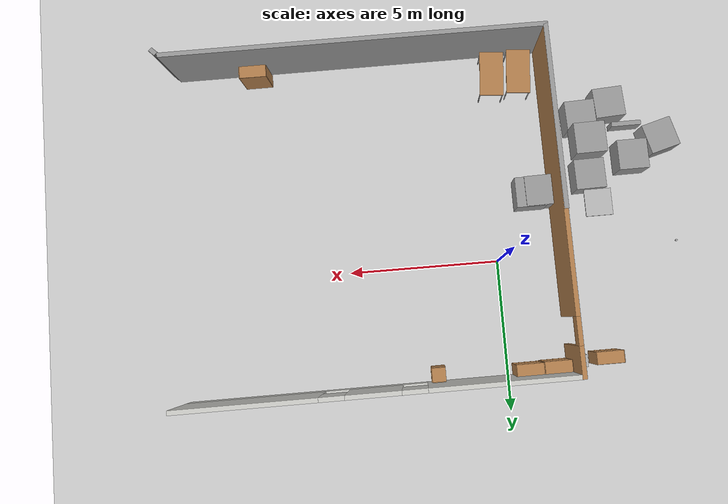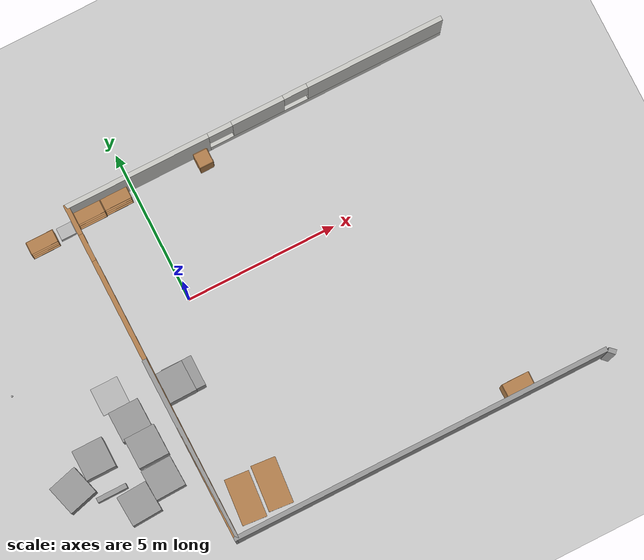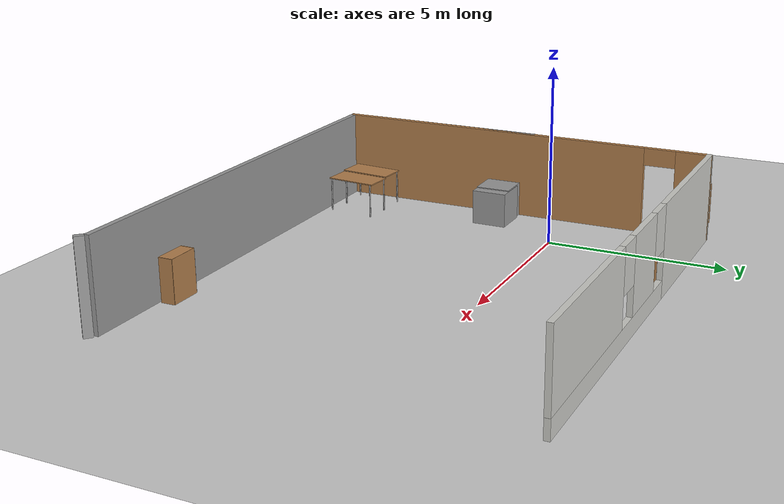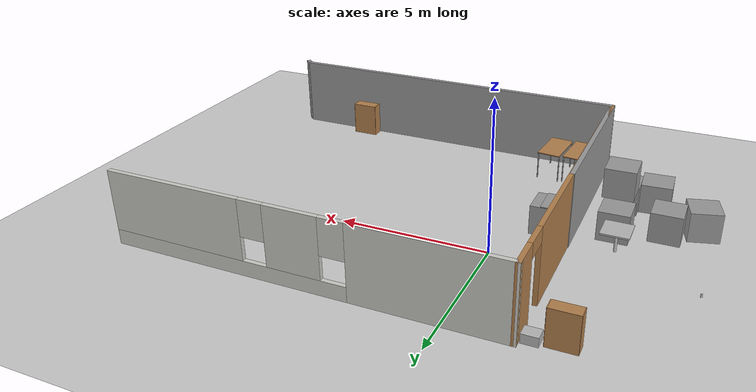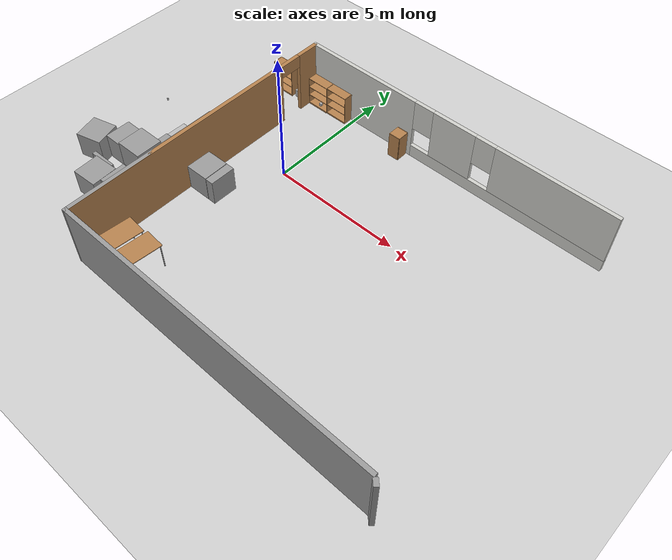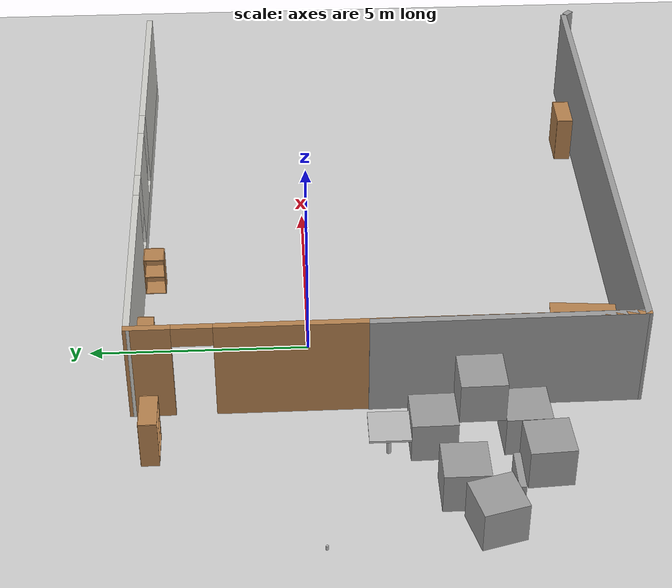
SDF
<sdf version="1.7">
 <world name="default">
  <light name="sun" type="directional">
   <pose>0 0 10 0 -0 0</pose>
   <diffuse>0.8 0.8 0.8 1</diffuse>
   <specular>0.2 0.2 0.2 1</specular>
   <attenuation>
    <range>1000</range>
    <constant>0.9</constant>
    <linear>0.01</linear>
    <quadratic>0.001</quadratic>
   </attenuation>
   <direction>-0.5 0.1 -0.9</direction>
   <spot><inner_angle>0</inner_angle><outer_angle>0</outer_angle><falloff>0</falloff></spot>
  </light>
  <model name="ground_plane">
   <static>1</static>
   <link name="link">
    <collision name="collision">
     <geometry><plane><normal>0 0 1</normal><size>100 100</size></plane></geometry>
     <surface>
      <contact><collide_bitmask>65535</collide_bitmask></contact>
      <friction><ode><mu>100</mu><mu2>50</mu2></ode></friction>
     </surface>
    </collision>
    <visual name="visual">
     <cast_shadows>0</cast_shadows>
     <geometry><plane><normal>0 0 1</normal><size>100 100</size></plane></geometry>
     <material>
      <script><uri>file://media/materials/scripts/gazebo.material</uri><name>Gazebo/Grey</name></script>
     </material>
    </visual>
   </link>
  </model>
  <gravity>0 0 -9.8</gravity>
  <magnetic_field>6e-06 2.3e-05 -4.2e-05</magnetic_field>
  <atmosphere type="adiabatic"/>
  <physics type="ode">
   <max_step_size>0.001</max_step_size>
   <real_time_factor>1</real_time_factor>
   <real_time_update_rate>1000</real_time_update_rate>
  </physics>
  <scene><ambient>0.4 0.4 0.4 1</ambient><background>0.7 0.7 0.7 1</background><shadows>1</shadows></scene>
  <audio><device>default</device></audio>
  <spherical_coordinates>
   <surface_model>EARTH_WGS84</surface_model>
   <latitude_deg>0</latitude_deg>
   <longitude_deg>0</longitude_deg>
   <elevation>0</elevation>
   <heading_deg>0</heading_deg>
  </spherical_coordinates>
  <model name="Raka_builder">
   <pose>4.26636 -1.78496 0 0 -0 0</pose>
   <link name="Wall_0">
    <collision name="Wall_0_Collision">
     <geometry><box><size>6.07306 0.15 2.5</size></box></geometry>
     <pose>0 0 1.25 0 -0 0</pose>
    </collision>
    <visual name="Wall_0_Visual">
     <pose>0 0 1.25 0 -0 0</pose>
     <geometry><box><size>6.07306 0.15 2.5</size></box></geometry>
     <material>
      <script><uri>file://media/materials/scripts/gazebo.material</uri><name>Gazebo/Grey</name></script>
      <ambient>1 1 1 1</ambient>
     </material>
     <meta><layer>0</layer></meta>
    </visual>
    <pose>-6.29958 -2.52891 0 0 -0 -1.56299</pose>
   </link>
   <link name="Wall_1">
    <pose>-6.29958 0.09609 0 0 -0 1.57494</pose>
    <visual name="Wall_1_Visual_0">
     <pose>-0.956613 0 1.25 0 -0 0</pose>
     <geometry><box><size>9.40975 0.15 2.5</size></box></geometry>
     <material>
      <script><uri>file://media/materials/scripts/gazebo.material</uri><name>Gazebo/Wood</name></script>
      <ambient>1 1 1 1</ambient>
     </material>
     <meta><layer>0</layer></meta>
    </visual>
    <collision name="Wall_1_Collision_0">
     <geometry><box><size>9.40975 0.15 2.5</size></box></geometry>
     <pose>-0.956613 0 1.25 0 -0 0</pose>
    </collision>
    <visual name="Wall_1_Visual_1">
     <pose>5.15487 0 1.25 0 -0 0</pose>
     <geometry><box><size>1.01323 0.15 2.5</size></box></geometry>
     <material>
      <script><uri>file://media/materials/scripts/gazebo.material</uri><name>Gazebo/Wood</name></script>
      <ambient>1 1 1 1</ambient>
     </material>
     <meta><layer>0</layer></meta>
    </visual>
    <collision name="Wall_1_Collision_1">
     <geometry><box><size>1.01323 0.15 2.5</size></box></geometry>
     <pose>5.15487 0 1.25 0 -0 0</pose>
    </collision>
    <visual name="Wall_1_Visual_2">
     <pose>4.19826 0 2.25 0 -0 0</pose>
     <geometry><box><size>0.9 0.15 0.5</size></box></geometry>
     <material>
      <script><uri>file://media/materials/scripts/gazebo.material</uri><name>Gazebo/Wood</name></script>
      <ambient>1 1 1 1</ambient>
     </material>
     <meta><layer>0</layer></meta>
    </visual>
    <collision name="Wall_1_Collision_2">
     <geometry><box><size>0.9 0.15 0.5</size></box></geometry>
     <pose>4.19826 0 2.25 0 -0 0</pose>
    </collision>
    <enable_wind>1</enable_wind>
   </link>
   <link name="Wall_16">
    <collision name="Wall_16_Collision">
     <geometry><box><size>12.5 0.15 2.5</size></box></geometry>
     <pose>0 0 1.25 0 -0 0</pose>
    </collision>
    <visual name="Wall_16_Visual">
     <pose>0 0 1.25 0 -0 0</pose>
     <geometry><box><size>12.5 0.15 2.5</size></box></geometry>
     <material>
      <script><uri>file://media/materials/scripts/gazebo.material</uri><name>Gazebo/Grey</name></script>
      <ambient>1 1 1 1</ambient>
     </material>
     <meta><layer>0</layer></meta>
    </visual>
    <pose>-0.101451 -5.49035 0 0 -0 0</pose>
   </link>
   <link name="Wall_2">
    <pose>-0.022713 5.68253 0 0 -0 0</pose>
    <visual name="Wall_2_Visual_0">
     <pose>-3.95906 0 1.25 0 -0 0</pose>
     <geometry><box><size>4.83189 0.15 2.5</size></box></geometry>
     <material>
      <script><uri>file://media/materials/scripts/gazebo.material</uri><name>Gazebo/CeilingTiled</name></script>
      <ambient>1 1 1 1</ambient>
     </material>
     <meta><layer>0</layer></meta>
    </visual>
    <collision name="Wall_2_Collision_0">
     <geometry><box><size>4.83189 0.15 2.5</size></box></geometry>
     <pose>-3.95906 0 1.25 0 -0 0</pose>
    </collision>
    <visual name="Wall_2_Visual_1">
     <pose>2.41594 0 0.25 0 -0 0</pose>
     <geometry><box><size>7.91811 0.15 0.5</size></box></geometry>
     <material>
      <script><uri>file://media/materials/scripts/gazebo.material</uri><name>Gazebo/CeilingTiled</name></script>
      <ambient>1 1 1 1</ambient>
     </material>
     <meta><layer>0</layer></meta>
    </visual>
    <collision name="Wall_2_Collision_1">
     <geometry><box><size>7.91811 0.15 0.5</size></box></geometry>
     <pose>2.41594 0 0.25 0 -0 0</pose>
    </collision>
    <visual name="Wall_2_Visual_2">
     <pose>0.129074 0 1.5 0 -0 0</pose>
     <geometry><box><size>1.74437 0.15 2</size></box></geometry>
     <material>
      <script><uri>file://media/materials/scripts/gazebo.material</uri><name>Gazebo/CeilingTiled</name></script>
      <ambient>1 1 1 1</ambient>
     </material>
     <meta><layer>0</layer></meta>
    </visual>
    <collision name="Wall_2_Collision_2">
     <geometry><box><size>1.74437 0.15 2</size></box></geometry>
     <pose>0.129074 0 1.5 0 -0 0</pose>
    </collision>
    <visual name="Wall_2_Visual_3">
     <pose>4.08813 0 1.5 0 -0 0</pose>
     <geometry><box><size>4.57374 0.15 2</size></box></geometry>
     <material>
      <script><uri>file://media/materials/scripts/gazebo.material</uri><name>Gazebo/CeilingTiled</name></script>
      <ambient>1 1 1 1</ambient>
     </material>
     <meta><layer>0</layer></meta>
    </visual>
    <collision name="Wall_2_Collision_3">
     <geometry><box><size>4.57374 0.15 2</size></box></geometry>
     <pose>4.08813 0 1.5 0 -0 0</pose>
    </collision>
    <visual name="Wall_2_Visual_4">
     <pose>-1.14311 0 1.9 0 -0 0</pose>
     <geometry><box><size>0.8 0.15 1.2</size></box></geometry>
     <material>
      <script><uri>file://media/materials/scripts/gazebo.material</uri><name>Gazebo/CeilingTiled</name></script>
      <ambient>1 1 1 1</ambient>
     </material>
     <meta><layer>0</layer></meta>
    </visual>
    <collision name="Wall_2_Collision_4">
     <geometry><box><size>0.8 0.15 1.2</size></box></geometry>
     <pose>-1.14311 0 1.9 0 -0 0</pose>
    </collision>
    <visual name="Wall_2_Visual_5">
     <pose>1.40126 0 1.9 0 -0 0</pose>
     <geometry><box><size>0.8 0.15 1.2</size></box></geometry>
     <material>
      <script><uri>file://media/materials/scripts/gazebo.material</uri><name>Gazebo/CeilingTiled</name></script>
      <ambient>1 1 1 1</ambient>
     </material>
     <meta><layer>0</layer></meta>
    </visual>
    <collision name="Wall_2_Collision_5">
     <geometry><box><size>0.8 0.15 1.2</size></box></geometry>
     <pose>1.40126 0 1.9 0 -0 0</pose>
    </collision>
   </link>
   <link name="Wall_7">
    <collision name="Wall_7_Collision">
     <geometry><box><size>0.248281 0.15 2.5</size></box></geometry>
     <pose>0 0 1.25 0 -0 0</pose>
    </collision>
    <visual name="Wall_7_Visual">
     <pose>0 0 1.25 0 -0 0</pose>
     <geometry><box><size>0.248281 0.15 2.5</size></box></geometry>
     <material>
      <script><uri>file://media/materials/scripts/gazebo.material</uri><name>Gazebo/Grey</name></script>
      <ambient>1 1 1 1</ambient>
     </material>
     <meta><layer>0</layer></meta>
    </visual>
    <pose>6.25719 -5.61733 0 0 -0 -0.776943</pose>
   </link>
   <static>1</static>
  </model>
  <model name="cafe_table">
   <static>1</static>
   <link name="link">
    <visual name="top">
     <pose>0 0 0.75 0 -0 0</pose>
     <geometry><box><size>0.9 0.9 0.05</size></box></geometry>
    </visual>
    <collision name="top_collision">
     <pose>0 0 0.75 0 -0 0</pose>
     <geometry><box><size>0.9 0.9 0.05</size></box></geometry>
    </collision>
    <visual name="leg">
     <pose>0 0 0.35 0 -0 0</pose>
     <geometry><cylinder><radius>0.05</radius><length>0.7</length></cylinder></geometry>
    </visual>
    <collision name="leg_collision">
     <pose>0 0 0.35 0 -0 0</pose>
     <geometry><cylinder><radius>0.05</radius><length>0.7</length></cylinder></geometry>
    </collision>
   </link>
   <pose>-3.47969 -1.62928 0 0 -0 0</pose>
  </model>
  <model name="cardboard_box">
   <static>1</static>
   <link name="link">
    <visual name="visual"><geometry><box><size>0.5 0.4 0.3</size></box></geometry></visual>
    <collision name="collision"><geometry><box><size>0.5 0.4 0.3</size></box></geometry></collision>
   </link>
   <pose>-2.40869 3.56845 0.15 0 -0 0</pose>
  </model>
  <model name="coke_can">
   <static>1</static>
   <link name="link">
    <visual name="visual">
     <geometry><cylinder><radius>0.03</radius><length>0.12</length></cylinder></geometry>
    </visual>
    <collision name="collision">
     <geometry><cylinder><radius>0.03</radius><length>0.12</length></cylinder></geometry>
    </collision>
   </link>
   <pose>-6.16573 -0.199524 0.02 0 -0 0</pose>
  </model>
  <model name="bookshelf">
   <static>1</static>
   <link name="link">
    <inertial><mass>1</mass></inertial>
    <collision name="back">
     <pose>0 0.005 0.6 0 -0 0</pose>
     <geometry><box><size>0.9 0.01 1.2</size></box></geometry>
    </collision>
    <visual name="visual1">
     <pose>0 0.005 0.6 0 -0 0</pose>
     <geometry><box><size>0.9 0.01 1.2</size></box></geometry>
     <material>
      <script><uri>file://media/materials/scripts/gazebo.material</uri><name>Gazebo/Wood</name></script>
     </material>
    </visual>
    <collision name="left_side">
     <pose>0.45 -0.195 0.6 0 -0 0</pose>
     <geometry><box><size>0.02 0.4 1.2</size></box></geometry>
    </collision>
    <visual name="visual2">
     <pose>0.45 -0.195 0.6 0 -0 0</pose>
     <geometry><box><size>0.02 0.4 1.2</size></box></geometry>
     <material>
      <script><uri>file://media/materials/scripts/gazebo.material</uri><name>Gazebo/Wood</name></script>
     </material>
    </visual>
    <collision name="right_side">
     <pose>-0.45 -0.195 0.6 0 -0 0</pose>
     <geometry><box><size>0.02 0.4 1.2</size></box></geometry>
    </collision>
    <visual name="visual3">
     <pose>-0.45 -0.195 0.6 0 -0 0</pose>
     <geometry><box><size>0.02 0.4 1.2</size></box></geometry>
     <material>
      <script><uri>file://media/materials/scripts/gazebo.material</uri><name>Gazebo/Wood</name></script>
     </material>
    </visual>
    <collision name="bottom">
     <pose>0 -0.195 0.03 0 -0 0</pose>
     <geometry><box><size>0.88 0.4 0.06</size></box></geometry>
    </collision>
    <visual name="visual4">
     <pose>0 -0.195 0.03 0 -0 0</pose>
     <geometry><box><size>0.88 0.4 0.06</size></box></geometry>
     <material>
      <script><uri>file://media/materials/scripts/gazebo.material</uri><name>Gazebo/Wood</name></script>
     </material>
    </visual>
    <collision name="top">
     <pose>0 -0.195 1.19 0 -0 0</pose>
     <geometry><box><size>0.88 0.4 0.02</size></box></geometry>
    </collision>
    <visual name="visual5">
     <pose>0 -0.195 1.19 0 -0 0</pose>
     <geometry><box><size>0.88 0.4 0.02</size></box></geometry>
     <material>
      <script><uri>file://media/materials/scripts/gazebo.material</uri><name>Gazebo/Wood</name></script>
     </material>
    </visual>
    <collision name="low_shelf">
     <pose>0 -0.195 0.43 0 -0 0</pose>
     <geometry><box><size>0.88 0.4 0.02</size></box></geometry>
    </collision>
    <visual name="visual6">
     <pose>0 -0.195 0.43 0 -0 0</pose>
     <geometry><box><size>0.88 0.4 0.02</size></box></geometry>
     <material>
      <script><uri>file://media/materials/scripts/gazebo.material</uri><name>Gazebo/Wood</name></script>
     </material>
    </visual>
    <collision name="high_shelf">
     <pose>0 -0.195 0.8 0 -0 0</pose>
     <geometry><box><size>0.88 0.4 0.02</size></box></geometry>
    </collision>
    <visual name="visual7">
     <pose>0 -0.195 0.8 0 -0 0</pose>
     <geometry><box><size>0.88 0.4 0.02</size></box></geometry>
     <material>
      <script><uri>file://media/materials/scripts/gazebo.material</uri><name>Gazebo/Wood</name></script>
     </material>
    </visual>
   </link>
   <pose>-3.21013 3.66198 0 0 -0 0</pose>
  </model>
  <model name="bookshelf_0">
   <static>1</static>
   <link name="link">
    <inertial><mass>1</mass></inertial>
    <collision name="back">
     <pose>0 0.005 0.6 0 -0 0</pose>
     <geometry><box><size>0.9 0.01 1.2</size></box></geometry>
    </collision>
    <visual name="visual1">
     <pose>0 0.005 0.6 0 -0 0</pose>
     <geometry><box><size>0.9 0.01 1.2</size></box></geometry>
     <material>
      <script><uri>file://media/materials/scripts/gazebo.material</uri><name>Gazebo/Wood</name></script>
     </material>
    </visual>
    <collision name="left_side">
     <pose>0.45 -0.195 0.6 0 -0 0</pose>
     <geometry><box><size>0.02 0.4 1.2</size></box></geometry>
    </collision>
    <visual name="visual2">
     <pose>0.45 -0.195 0.6 0 -0 0</pose>
     <geometry><box><size>0.02 0.4 1.2</size></box></geometry>
     <material>
      <script><uri>file://media/materials/scripts/gazebo.material</uri><name>Gazebo/Wood</name></script>
     </material>
    </visual>
    <collision name="right_side">
     <pose>-0.45 -0.195 0.6 0 -0 0</pose>
     <geometry><box><size>0.02 0.4 1.2</size></box></geometry>
    </collision>
    <visual name="visual3">
     <pose>-0.45 -0.195 0.6 0 -0 0</pose>
     <geometry><box><size>0.02 0.4 1.2</size></box></geometry>
     <material>
      <script><uri>file://media/materials/scripts/gazebo.material</uri><name>Gazebo/Wood</name></script>
     </material>
    </visual>
    <collision name="bottom">
     <pose>0 -0.195 0.03 0 -0 0</pose>
     <geometry><box><size>0.88 0.4 0.06</size></box></geometry>
    </collision>
    <visual name="visual4">
     <pose>0 -0.195 0.03 0 -0 0</pose>
     <geometry><box><size>0.88 0.4 0.06</size></box></geometry>
     <material>
      <script><uri>file://media/materials/scripts/gazebo.material</uri><name>Gazebo/Wood</name></script>
     </material>
    </visual>
    <collision name="top">
     <pose>0 -0.195 1.19 0 -0 0</pose>
     <geometry><box><size>0.88 0.4 0.02</size></box></geometry>
    </collision>
    <visual name="visual5">
     <pose>0 -0.195 1.19 0 -0 0</pose>
     <geometry><box><size>0.88 0.4 0.02</size></box></geometry>
     <material>
      <script><uri>file://media/materials/scripts/gazebo.material</uri><name>Gazebo/Wood</name></script>
     </material>
    </visual>
    <collision name="low_shelf">
     <pose>0 -0.195 0.43 0 -0 0</pose>
     <geometry><box><size>0.88 0.4 0.02</size></box></geometry>
    </collision>
    <visual name="visual6">
     <pose>0 -0.195 0.43 0 -0 0</pose>
     <geometry><box><size>0.88 0.4 0.02</size></box></geometry>
     <material>
      <script><uri>file://media/materials/scripts/gazebo.material</uri><name>Gazebo/Wood</name></script>
     </material>
    </visual>
    <collision name="high_shelf">
     <pose>0 -0.195 0.8 0 -0 0</pose>
     <geometry><box><size>0.88 0.4 0.02</size></box></geometry>
    </collision>
    <visual name="visual7">
     <pose>0 -0.195 0.8 0 -0 0</pose>
     <geometry><box><size>0.88 0.4 0.02</size></box></geometry>
     <material>
      <script><uri>file://media/materials/scripts/gazebo.material</uri><name>Gazebo/Wood</name></script>
     </material>
    </visual>
   </link>
   <pose>-1.52842 3.82696 0 0 -0 0</pose>
  </model>
  <model name="cardboard_box">
   <static>1</static>
   <link name="link">
    <visual name="visual"><geometry><box><size>0.5 0.4 0.3</size></box></geometry></visual>
    <collision name="collision"><geometry><box><size>0.5 0.4 0.3</size></box></geometry></collision>
   </link>
   <pose>-2.40869 3.56845 0.15 0 -0 0</pose>
  </model>
  <model name="coke_can">
   <static>1</static>
   <link name="link">
    <visual name="visual">
     <geometry><cylinder><radius>0.03</radius><length>0.12</length></cylinder></geometry>
    </visual>
    <collision name="collision">
     <geometry><cylinder><radius>0.03</radius><length>0.12</length></cylinder></geometry>
    </collision>
   </link>
   <pose>-6.16573 -0.199524 0.02 0 -0 0</pose>
  </model>
  <model name="depth_camera">
   <link name="link">
    <pose>0 0 0.05 0 -0 0</pose>
    <inertial>
     <mass>0.1</mass>
     <inertia>
      <ixx>0.000166667</ixx>
      <iyy>0.000166667</iyy>
      <izz>0.000166667</izz>
      <ixy>0</ixy>
      <ixz>0</ixz>
      <iyz>0</iyz>
     </inertia>
    </inertial>
    <collision name="collision"><geometry><box><size>0.1 0.1 0.1</size></box></geometry></collision>
    <visual name="visual"><geometry><box><size>0.1 0.1 0.1</size></box></geometry></visual>
    <sensor name="camera" type="depth">
     <camera>
      <horizontal_fov>1.047</horizontal_fov>
      <image><width>320</width><height>240</height></image>
      <clip><near>0.1</near><far>100</far></clip>
     </camera>
     <always_on>1</always_on>
     <update_rate>30</update_rate>
     <visualize>1</visualize>
    </sensor>
   </link>
   <pose>-1.49922 3.5854 0.06 0 -0 -1e-06</pose>
  </model>
  <model name="cabinet">
   <static>1</static>
   <link name="cabinet_bottom_plate">
    <inertial>
     <pose>0 0 -1 0 -0 0</pose>
     <inertia><ixx>2.05</ixx><ixy>0</ixy><ixz>0</ixz><iyy>2.05</iyy><iyz>0</iyz><izz>2.05</izz></inertia>
     <mass>25</mass>
    </inertial>
    <collision name="cabinet_bottom_plate_geom">
     <pose>0 0 0.01 0 -0 0</pose>
     <geometry><box><size>0.45 0.45 0.02</size></box></geometry>
    </collision>
    <visual name="cabinet_bottom_plate_geom_visual">
     <pose>0 0 0.01 0 -0 0</pose>
     <geometry><box><size>0.45 0.45 0.02</size></box></geometry>
     <material>
      <script><uri>file://media/materials/scripts/gazebo.material</uri><name>Gazebo/Wood</name></script>
     </material>
    </visual>
    <collision name="cabinet_bottom_plate_geom_cabinet_back_plate">
     <pose>0.235 0 0.51 0 -0 0</pose>
     <geometry><box><size>0.02 0.45 1.02</size></box></geometry>
    </collision>
    <visual name="cabinet_bottom_plate_geom_cabinet_back_plate_visual">
     <pose>0.235 0 0.51 0 -0 0</pose>
     <geometry><box><size>0.02 0.45 1.02</size></box></geometry>
     <material>
      <script><uri>file://media/materials/scripts/gazebo.material</uri><name>Gazebo/Wood</name></script>
     </material>
    </visual>
    <collision name="cabinet_bottom_plate_geom_cabinet_left_plate">
     <pose>0 0.235 0.51 0 -0 0</pose>
     <geometry><box><size>0.45 0.02 1.02</size></box></geometry>
    </collision>
    <visual name="cabinet_bottom_plate_geom_cabinet_left_plate_visual">
     <pose>0 0.235 0.51 0 -0 0</pose>
     <geometry><box><size>0.45 0.02 1.02</size></box></geometry>
     <material>
      <script><uri>file://media/materials/scripts/gazebo.material</uri><name>Gazebo/Wood</name></script>
     </material>
    </visual>
    <collision name="cabinet_bottom_plate_geom_cabinet_middle_plate">
     <pose>0 0 0.51 0 -0 0</pose>
     <geometry><box><size>0.45 0.45 0.02</size></box></geometry>
    </collision>
    <visual name="cabinet_bottom_plate_geom_cabinet_middle_plate_visual">
     <pose>0 0 0.51 0 -0 0</pose>
     <geometry><box><size>0.45 0.45 0.02</size></box></geometry>
     <material>
      <script><uri>file://media/materials/scripts/gazebo.material</uri><name>Gazebo/Wood</name></script>
     </material>
    </visual>
    <collision name="cabinet_bottom_plate_geom_cabinet_right_plate">
     <pose>0 -0.235 0.51 0 -0 0</pose>
     <geometry><box><size>0.45 0.02 1.02</size></box></geometry>
    </collision>
    <visual name="cabinet_bottom_plate_geom_cabinet_right_plate_visual">
     <pose>0 -0.235 0.51 0 -0 0</pose>
     <geometry><box><size>0.45 0.02 1.02</size></box></geometry>
     <material>
      <script><uri>file://media/materials/scripts/gazebo.material</uri><name>Gazebo/Wood</name></script>
     </material>
    </visual>
    <collision name="cabinet_bottom_plate_geom_cabinet_top_plate">
     <pose>0 0 1.01 0 -0 0</pose>
     <geometry><box><size>0.45 0.45 0.02</size></box></geometry>
    </collision>
    <visual name="cabinet_bottom_plate_geom_cabinet_top_plate_visual">
     <pose>0 0 1.01 0 -0 0</pose>
     <geometry><box><size>0.45 0.45 0.02</size></box></geometry>
     <material>
      <script><uri>file://media/materials/scripts/gazebo.material</uri><name>Gazebo/Wood</name></script>
     </material>
    </visual>
   </link>
   <pose>2.31925 3.56049 0 0 -0 0</pose>
  </model>
  <model name="unit_box">
   <pose>-4.75456 -4.26428 0.317863 1e-06 -0 0.004816</pose>
   <link name="link">
    <inertial>
     <mass>1</mass>
     <inertia>
      <ixx>0.166667</ixx>
      <ixy>0</ixy>
      <ixz>0</ixz>
      <iyy>0.166667</iyy>
      <iyz>0</iyz>
      <izz>0.166667</izz>
     </inertia>
    </inertial>
    <collision name="collision"><geometry><box><size>1 0.15557 0.635726</size></box></geometry></collision>
    <visual name="visual">
     <geometry><box><size>1 0.15557 0.635726</size></box></geometry>
     <material>
      <script><name>Gazebo/Grey</name><uri>file://media/materials/scripts/gazebo.material</uri></script>
     </material>
    </visual>
    <enable_wind>1</enable_wind>
   </link>
  </model>
  <model name="unit_box_0">
   <pose>-5.76254 -3.6844 0.5 0 -0 0.266682</pose>
   <link name="link">
    <inertial>
     <mass>1</mass>
     <inertia>
      <ixx>0.166667</ixx>
      <ixy>0</ixy>
      <ixz>0</ixz>
      <iyy>0.166667</iyy>
      <iyz>0</iyz>
      <izz>0.166667</izz>
     </inertia>
    </inertial>
    <collision name="collision"><geometry><box><size>1 1 1</size></box></geometry></collision>
    <visual name="visual">
     <geometry><box><size>1 1 1</size></box></geometry>
     <material>
      <script><name>Gazebo/Grey</name><uri>file://media/materials/scripts/gazebo.material</uri></script>
     </material>
    </visual>
   </link>
  </model>
  <model name="unit_box_1">
   <pose>-4.76296 -3.12092 0.499995 0 1e-05 0.004406</pose>
   <link name="link">
    <inertial>
     <mass>1</mass>
     <inertia>
      <ixx>0.166667</ixx>
      <ixy>0</ixy>
      <ixz>0</ixz>
      <iyy>0.166667</iyy>
      <iyz>0</iyz>
      <izz>0.166667</izz>
     </inertia>
    </inertial>
    <collision name="collision"><geometry><box><size>1 1 1</size></box></geometry></collision>
    <visual name="visual">
     <geometry><box><size>1 1 1</size></box></geometry>
     <material>
      <script><name>Gazebo/Grey</name><uri>file://media/materials/scripts/gazebo.material</uri></script>
     </material>
    </visual>
   </link>
  </model>
  <model name="unit_box_2">
   <pose>-4.15309 -4.95442 0.5 0 -0 0.056823</pose>
   <link name="link">
    <inertial>
     <mass>1</mass>
     <inertia>
      <ixx>0.166667</ixx>
      <ixy>0</ixy>
      <ixz>0</ixz>
      <iyy>0.166667</iyy>
      <iyz>0</iyz>
      <izz>0.166667</izz>
     </inertia>
    </inertial>
    <collision name="collision"><geometry><box><size>1 1 1</size></box></geometry></collision>
    <visual name="visual">
     <geometry><box><size>1 1 1</size></box></geometry>
     <material>
      <script><name>Gazebo/Grey</name><uri>file://media/materials/scripts/gazebo.material</uri></script>
     </material>
    </visual>
   </link>
  </model>
  <model name="unit_box_3">
   <pose>-3.16085 -4.59198 0.499995 1e-05 -0 0.034737</pose>
   <link name="link">
    <inertial>
     <mass>1</mass>
     <inertia>
      <ixx>0.166667</ixx>
      <ixy>0</ixy>
      <ixz>0</ixz>
      <iyy>0.166667</iyy>
      <iyz>0</iyz>
      <izz>0.166667</izz>
     </inertia>
    </inertial>
    <collision name="collision"><geometry><box><size>1 1 1</size></box></geometry></collision>
    <visual name="visual">
     <geometry><box><size>1 1 1</size></box></geometry>
     <material>
      <script><name>Gazebo/Grey</name><uri>file://media/materials/scripts/gazebo.material</uri></script>
     </material>
    </visual>
   </link>
  </model>
  <model name="unit_box_4">
   <pose>-3.26144 -2.58284 0.499995 0 -1e-05 0.01485</pose>
   <link name="link">
    <inertial>
     <mass>1</mass>
     <inertia>
      <ixx>0.166667</ixx>
      <ixy>0</ixy>
      <ixz>0</ixz>
      <iyy>0.166667</iyy>
      <iyz>0</iyz>
      <izz>0.166667</izz>
     </inertia>
    </inertial>
    <collision name="collision"><geometry><box><size>1 1 1</size></box></geometry></collision>
    <visual name="visual">
     <geometry><box><size>1 1 1</size></box></geometry>
     <material>
      <script><name>Gazebo/Grey</name><uri>file://media/materials/scripts/gazebo.material</uri></script>
     </material>
    </visual>
   </link>
  </model>
  <model name="bookshelf_0_clone">
   <static>1</static>
   <link name="link">
    <inertial><mass>1</mass></inertial>
    <collision name="back">
     <pose>0 0.005 0.6 0 -0 0</pose>
     <geometry><box><size>0.9 0.01 1.2</size></box></geometry>
    </collision>
    <visual name="visual1">
     <pose>0 0.005 0.6 0 -0 0</pose>
     <geometry><box><size>0.9 0.01 1.2</size></box></geometry>
     <material>
      <script><uri>file://media/materials/scripts/gazebo.material</uri><name>Gazebo/Wood</name></script>
     </material>
    </visual>
    <collision name="left_side">
     <pose>0.45 -0.195 0.6 0 -0 0</pose>
     <geometry><box><size>0.02 0.4 1.2</size></box></geometry>
    </collision>
    <visual name="visual2">
     <pose>0.45 -0.195 0.6 0 -0 0</pose>
     <geometry><box><size>0.02 0.4 1.2</size></box></geometry>
     <material>
      <script><uri>file://media/materials/scripts/gazebo.material</uri><name>Gazebo/Wood</name></script>
     </material>
    </visual>
    <collision name="right_side">
     <pose>-0.45 -0.195 0.6 0 -0 0</pose>
     <geometry><box><size>0.02 0.4 1.2</size></box></geometry>
    </collision>
    <visual name="visual3">
     <pose>-0.45 -0.195 0.6 0 -0 0</pose>
     <geometry><box><size>0.02 0.4 1.2</size></box></geometry>
     <material>
      <script><uri>file://media/materials/scripts/gazebo.material</uri><name>Gazebo/Wood</name></script>
     </material>
    </visual>
    <collision name="bottom">
     <pose>0 -0.195 0.03 0 -0 0</pose>
     <geometry><box><size>0.88 0.4 0.06</size></box></geometry>
    </collision>
    <visual name="visual4">
     <pose>0 -0.195 0.03 0 -0 0</pose>
     <geometry><box><size>0.88 0.4 0.06</size></box></geometry>
     <material>
      <script><uri>file://media/materials/scripts/gazebo.material</uri><name>Gazebo/Wood</name></script>
     </material>
    </visual>
    <collision name="top">
     <pose>0 -0.195 1.19 0 -0 0</pose>
     <geometry><box><size>0.88 0.4 0.02</size></box></geometry>
    </collision>
    <visual name="visual5">
     <pose>0 -0.195 1.19 0 -0 0</pose>
     <geometry><box><size>0.88 0.4 0.02</size></box></geometry>
     <material>
      <script><uri>file://media/materials/scripts/gazebo.material</uri><name>Gazebo/Wood</name></script>
     </material>
    </visual>
    <collision name="low_shelf">
     <pose>0 -0.195 0.43 0 -0 0</pose>
     <geometry><box><size>0.88 0.4 0.02</size></box></geometry>
    </collision>
    <visual name="visual6">
     <pose>0 -0.195 0.43 0 -0 0</pose>
     <geometry><box><size>0.88 0.4 0.02</size></box></geometry>
     <material>
      <script><uri>file://media/materials/scripts/gazebo.material</uri><name>Gazebo/Wood</name></script>
     </material>
    </visual>
    <collision name="high_shelf">
     <pose>0 -0.195 0.8 0 -0 0</pose>
     <geometry><box><size>0.88 0.4 0.02</size></box></geometry>
    </collision>
    <visual name="visual7">
     <pose>0 -0.195 0.8 0 -0 0</pose>
     <geometry><box><size>0.88 0.4 0.02</size></box></geometry>
     <material>
      <script><uri>file://media/materials/scripts/gazebo.material</uri><name>Gazebo/Wood</name></script>
     </material>
    </visual>
   </link>
   <pose>-0.617959 3.84635 0 0 -0 0</pose>
  </model>
  <model name="unit_box_5">
   <pose>-3.16141 -3.58215 1.5 0 -0 0.01644</pose>
   <link name="link">
    <inertial>
     <mass>1</mass>
     <inertia>
      <ixx>0.166667</ixx>
      <ixy>0</ixy>
      <ixz>0</ixz>
      <iyy>0.166667</iyy>
      <iyz>0</iyz>
      <izz>0.166667</izz>
     </inertia>
    </inertial>
    <collision name="collision"><geometry><box><size>1 1 1</size></box></geometry></collision>
    <visual name="visual">
     <geometry><box><size>1 1 1</size></box></geometry>
     <material>
      <script><name>Gazebo/Grey</name><uri>file://media/materials/scripts/gazebo.material</uri></script>
     </material>
    </visual>
    <enable_wind>1</enable_wind>
   </link>
   <enable_wind>1</enable_wind>
  </model>
  <model name="bookshelf_1">
   <static>1</static>
   <link name="link">
    <inertial><mass>1</mass></inertial>
    <collision name="back">
     <pose>0 0.005 0.6 0 -0 0</pose>
     <geometry><box><size>0.9 0.01 1.2</size></box></geometry>
    </collision>
    <visual name="visual1">
     <pose>0 0.005 0.6 0 -0 0</pose>
     <geometry><box><size>0.9 0.01 1.2</size></box></geometry>
     <material>
      <script><uri>file://media/materials/scripts/gazebo.material</uri><name>Gazebo/Wood</name></script>
     </material>
    </visual>
    <collision name="left_side">
     <pose>0.45 -0.195 0.6 0 -0 0</pose>
     <geometry><box><size>0.02 0.4 1.2</size></box></geometry>
    </collision>
    <visual name="visual2">
     <pose>0.45 -0.195 0.6 0 -0 0</pose>
     <geometry><box><size>0.02 0.4 1.2</size></box></geometry>
     <material>
      <script><uri>file://media/materials/scripts/gazebo.material</uri><name>Gazebo/Wood</name></script>
     </material>
    </visual>
    <collision name="right_side">
     <pose>-0.45 -0.195 0.6 0 -0 0</pose>
     <geometry><box><size>0.02 0.4 1.2</size></box></geometry>
    </collision>
    <visual name="visual3">
     <pose>-0.45 -0.195 0.6 0 -0 0</pose>
     <geometry><box><size>0.02 0.4 1.2</size></box></geometry>
     <material>
      <script><uri>file://media/materials/scripts/gazebo.material</uri><name>Gazebo/Wood</name></script>
     </material>
    </visual>
    <collision name="bottom">
     <pose>0 -0.195 0.03 0 -0 0</pose>
     <geometry><box><size>0.88 0.4 0.06</size></box></geometry>
    </collision>
    <visual name="visual4">
     <pose>0 -0.195 0.03 0 -0 0</pose>
     <geometry><box><size>0.88 0.4 0.06</size></box></geometry>
     <material>
      <script><uri>file://media/materials/scripts/gazebo.material</uri><name>Gazebo/Wood</name></script>
     </material>
    </visual>
    <collision name="top">
     <pose>0 -0.195 1.19 0 -0 0</pose>
     <geometry><box><size>0.88 0.4 0.02</size></box></geometry>
    </collision>
    <visual name="visual5">
     <pose>0 -0.195 1.19 0 -0 0</pose>
     <geometry><box><size>0.88 0.4 0.02</size></box></geometry>
     <material>
      <script><uri>file://media/materials/scripts/gazebo.material</uri><name>Gazebo/Wood</name></script>
     </material>
    </visual>
    <collision name="low_shelf">
     <pose>0 -0.195 0.43 0 -0 0</pose>
     <geometry><box><size>0.88 0.4 0.02</size></box></geometry>
    </collision>
    <visual name="visual6">
     <pose>0 -0.195 0.43 0 -0 0</pose>
     <geometry><box><size>0.88 0.4 0.02</size></box></geometry>
     <material>
      <script><uri>file://media/materials/scripts/gazebo.material</uri><name>Gazebo/Wood</name></script>
     </material>
    </visual>
    <collision name="high_shelf">
     <pose>0 -0.195 0.8 0 -0 0</pose>
     <geometry><box><size>0.88 0.4 0.02</size></box></geometry>
    </collision>
    <visual name="visual7">
     <pose>0 -0.195 0.8 0 -0 0</pose>
     <geometry><box><size>0.88 0.4 0.02</size></box></geometry>
     <material>
      <script><uri>file://media/materials/scripts/gazebo.material</uri><name>Gazebo/Wood</name></script>
     </material>
    </visual>
   </link>
   <pose>7.67507 -6.75247 0 0 -0 0</pose>
  </model>
  <model name="table">
   <static>1</static>
   <link name="link">
    <collision name="surface">
     <pose>0 0 1 0 -0 0</pose>
     <geometry><box><size>1.5 0.8 0.03</size></box></geometry>
     <surface><friction><ode><mu>0.6</mu><mu2>0.6</mu2></ode></friction></surface>
    </collision>
    <visual name="visual1">
     <pose>0 0 1 0 -0 0</pose>
     <geometry><box><size>1.5 0.8 0.03</size></box></geometry>
     <material>
      <script><uri>file://media/materials/scripts/gazebo.material</uri><name>Gazebo/Wood</name></script>
     </material>
    </visual>
    <collision name="front_left_leg">
     <pose>0.68 0.38 0.5 0 -0 0</pose>
     <geometry><cylinder><radius>0.02</radius><length>1</length></cylinder></geometry>
    </collision>
    <visual name="front_left_leg">
     <pose>0.68 0.38 0.5 0 -0 0</pose>
     <geometry><cylinder><radius>0.02</radius><length>1</length></cylinder></geometry>
     <material>
      <script><uri>file://media/materials/scripts/gazebo.material</uri><name>Gazebo/Grey</name></script>
     </material>
    </visual>
    <collision name="front_right_leg">
     <pose>0.68 -0.38 0.5 0 -0 0</pose>
     <geometry><cylinder><radius>0.02</radius><length>1</length></cylinder></geometry>
    </collision>
    <visual name="front_right_leg">
     <pose>0.68 -0.38 0.5 0 -0 0</pose>
     <geometry><cylinder><radius>0.02</radius><length>1</length></cylinder></geometry>
     <material>
      <script><uri>file://media/materials/scripts/gazebo.material</uri><name>Gazebo/Grey</name></script>
     </material>
    </visual>
    <collision name="back_right_leg">
     <pose>-0.68 -0.38 0.5 0 -0 0</pose>
     <geometry><cylinder><radius>0.02</radius><length>1</length></cylinder></geometry>
    </collision>
    <visual name="back_right_leg">
     <pose>-0.68 -0.38 0.5 0 -0 0</pose>
     <geometry><cylinder><radius>0.02</radius><length>1</length></cylinder></geometry>
     <material>
      <script><uri>file://media/materials/scripts/gazebo.material</uri><name>Gazebo/Grey</name></script>
     </material>
    </visual>
    <collision name="back_left_leg">
     <pose>-0.68 0.38 0.5 0 -0 0</pose>
     <geometry><cylinder><radius>0.02</radius><length>1</length></cylinder></geometry>
    </collision>
    <visual name="back_left_leg">
     <pose>-0.68 0.38 0.5 0 -0 0</pose>
     <geometry><cylinder><radius>0.02</radius><length>1</length></cylinder></geometry>
     <material>
      <script><uri>file://media/materials/scripts/gazebo.material</uri><name>Gazebo/Grey</name></script>
     </material>
    </visual>
   </link>
   <pose>-1.21849 -6.26818 0 0 -0 1.48717</pose>
  </model>
  <model name="table_clone">
   <static>1</static>
   <link name="link">
    <collision name="surface">
     <pose>0 0 1 0 -0 0</pose>
     <geometry><box><size>1.5 0.8 0.03</size></box></geometry>
     <surface><friction><ode><mu>0.6</mu><mu2>0.6</mu2></ode></friction></surface>
    </collision>
    <visual name="visual1">
     <pose>0 0 1 0 -0 0</pose>
     <geometry><box><size>1.5 0.8 0.03</size></box></geometry>
     <material>
      <script><uri>file://media/materials/scripts/gazebo.material</uri><name>Gazebo/Wood</name></script>
     </material>
    </visual>
    <collision name="front_left_leg">
     <pose>0.68 0.38 0.5 0 -0 0</pose>
     <geometry><cylinder><radius>0.02</radius><length>1</length></cylinder></geometry>
    </collision>
    <visual name="front_left_leg">
     <pose>0.68 0.38 0.5 0 -0 0</pose>
     <geometry><cylinder><radius>0.02</radius><length>1</length></cylinder></geometry>
     <material>
      <script><uri>file://media/materials/scripts/gazebo.material</uri><name>Gazebo/Grey</name></script>
     </material>
    </visual>
    <collision name="front_right_leg">
     <pose>0.68 -0.38 0.5 0 -0 0</pose>
     <geometry><cylinder><radius>0.02</radius><length>1</length></cylinder></geometry>
    </collision>
    <visual name="front_right_leg">
     <pose>0.68 -0.38 0.5 0 -0 0</pose>
     <geometry><cylinder><radius>0.02</radius><length>1</length></cylinder></geometry>
     <material>
      <script><uri>file://media/materials/scripts/gazebo.material</uri><name>Gazebo/Grey</name></script>
     </material>
    </visual>
    <collision name="back_right_leg">
     <pose>-0.68 -0.38 0.5 0 -0 0</pose>
     <geometry><cylinder><radius>0.02</radius><length>1</length></cylinder></geometry>
    </collision>
    <visual name="back_right_leg">
     <pose>-0.68 -0.38 0.5 0 -0 0</pose>
     <geometry><cylinder><radius>0.02</radius><length>1</length></cylinder></geometry>
     <material>
      <script><uri>file://media/materials/scripts/gazebo.material</uri><name>Gazebo/Grey</name></script>
     </material>
    </visual>
    <collision name="back_left_leg">
     <pose>-0.68 0.38 0.5 0 -0 0</pose>
     <geometry><cylinder><radius>0.02</radius><length>1</length></cylinder></geometry>
    </collision>
    <visual name="back_left_leg">
     <pose>-0.68 0.38 0.5 0 -0 0</pose>
     <geometry><cylinder><radius>0.02</radius><length>1</length></cylinder></geometry>
     <material>
      <script><uri>file://media/materials/scripts/gazebo.material</uri><name>Gazebo/Grey</name></script>
     </material>
    </visual>
   </link>
   <pose>-0.316876 -6.25584 0 0 -0 1.48717</pose>
  </model>
  <model name="unit_box_6">
   <pose>-1.55833 -2.17034 0.5 0 -0 1.58554</pose>
   <link name="link">
    <inertial>
     <mass>1</mass>
     <inertia>
      <ixx>0.166667</ixx>
      <ixy>0</ixy>
      <ixz>0</ixz>
      <iyy>0.166667</iyy>
      <iyz>0</iyz>
      <izz>0.166667</izz>
     </inertia>
    </inertial>
    <collision name="collision"><geometry><box><size>0.999998 1 1</size></box></geometry></collision>
    <visual name="visual">
     <geometry><box><size>0.999998 1 1</size></box></geometry>
     <material>
      <script><name>Gazebo/Grey</name><uri>file://media/materials/scripts/gazebo.material</uri></script>
     </material>
    </visual>
   </link>
  </model>
  <model name="unit_box_7">
   <pose>-1.23874 -2.15015 0.473448 0 -0 0</pose>
   <link name="link">
    <inertial>
     <mass>1</mass>
     <inertia>
      <ixx>0.166667</ixx>
      <ixy>0</ixy>
      <ixz>0</ixz>
      <iyy>0.166667</iyy>
      <iyz>0</iyz>
      <izz>0.166667</izz>
     </inertia>
    </inertial>
    <collision name="collision"><geometry><box><size>1 1 1</size></box></geometry></collision>
    <visual name="visual">
     <geometry><box><size>1 1 1</size></box></geometry>
     <material>
      <script><name>Gazebo/Grey</name><uri>file://media/materials/scripts/gazebo.material</uri></script>
     </material>
    </visual>
   </link>
  </model>
 </world>
</sdf>
